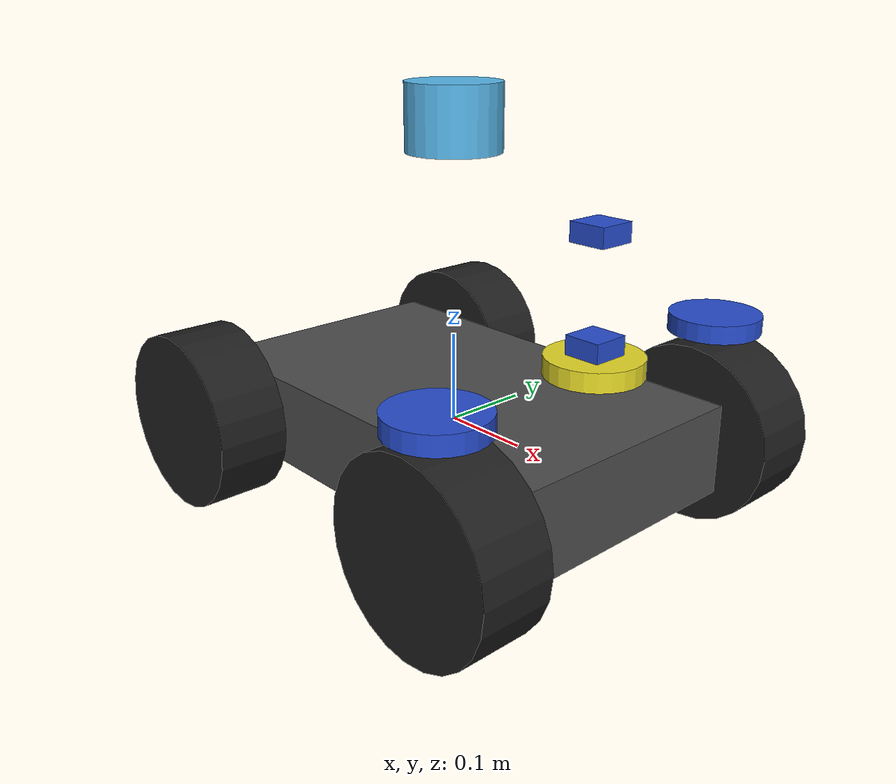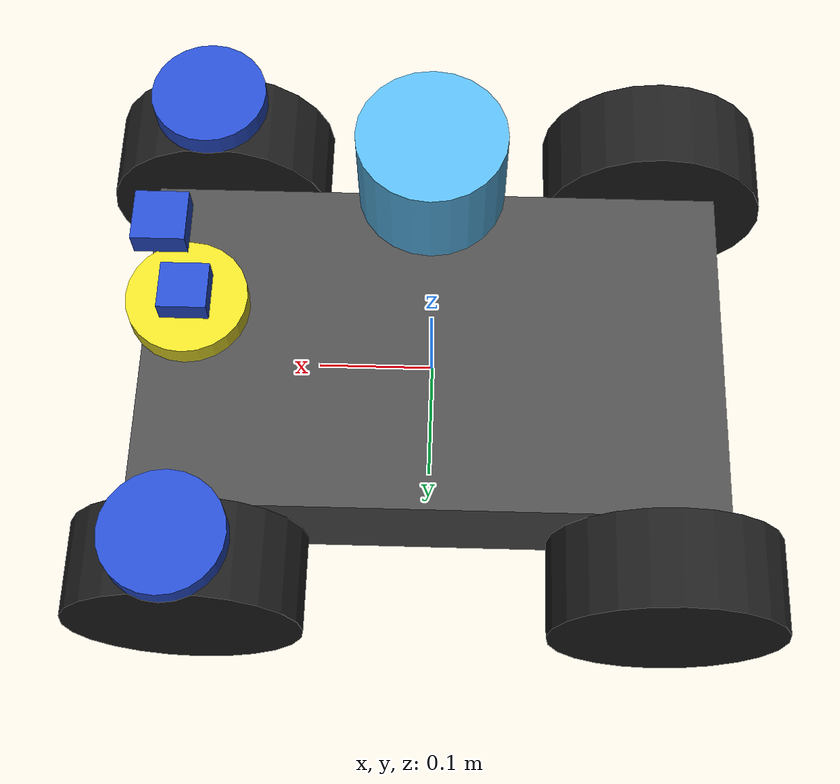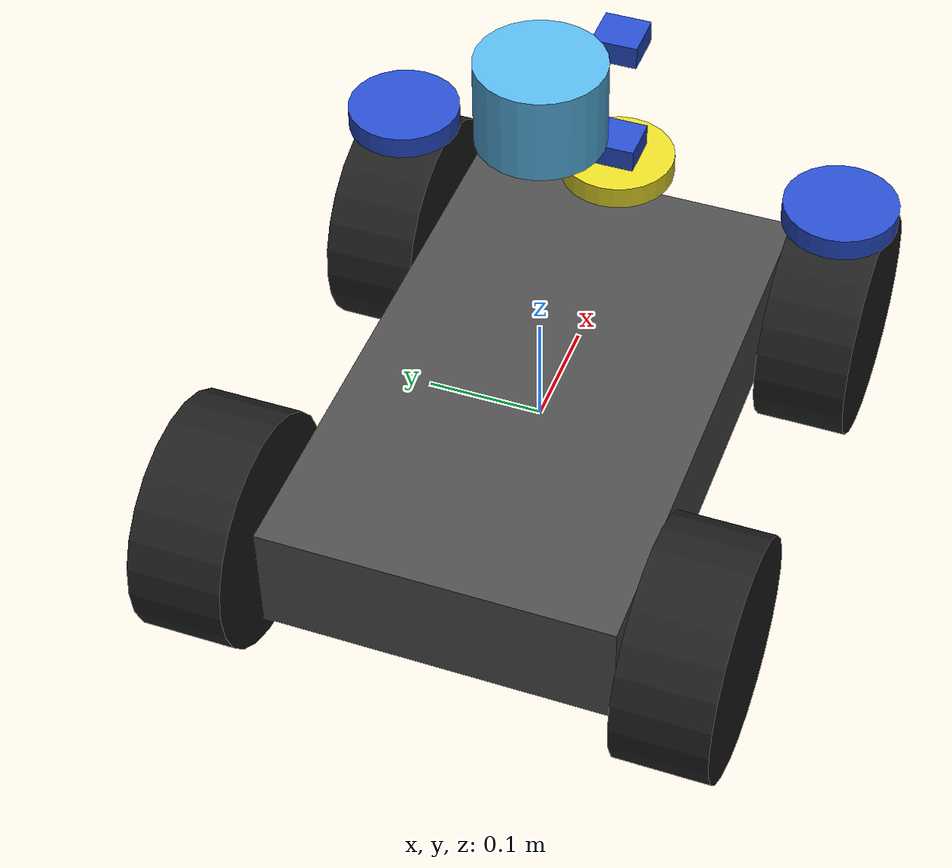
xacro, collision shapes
<?xml version="1.0"?>
<robot name="erp42_vehicle" xmlns:xacro="http://wiki.ros.org/xacro">
  <!-- Include xacro for inertials, materials and wheels -->
  <xacro:include filename="$(find erp42_vehicle_description)/urdf/wheel.xacro"/>
  <xacro:include filename="$(find velodyne_description)/urdf/VLP-16.urdf.xacro"/>

  <xacro:property name="robot_namespace" value="/erp42_vehicle"/>

  <!-- Gazebo plugins -->
  <gazebo>
    <!-- Load ros_control plugin using the steer_bot_hardware_gazebo
    implementation of the hardware_interface::RobotHW -->
    <plugin name="gazebo_ros_control" filename="libgazebo_ros_control.so">
      <robotSimType>erp42_hardware_gazebo/ERP42HardwareGazebo</robotSimType>
      <legacyModeNS>false</legacyModeNS>
    </plugin>
  </gazebo>

  <!-- Math constants -->
  <xacro:property name="deg_to_rad" value="0.01745329251994329577"/>

  <!-- Robot base dimensions -->
  <xacro:property name="base_length" value="0.5" />
  <xacro:property name="base_width" value="0.3" />
  <xacro:property name="base_height" value="0.1" />
  <xacro:property name="base_mass" value="5" />

  <!-- Wheel link dimensions -->
  <xacro:property name="wheel_radius" value="0.1" />
  <xacro:property name="wheel_thickness" value="0.08" />
  <xacro:property name="wheel_mass" value="1" />

  <!-- Steering link dimensions -->
  <xacro:property name="steer_radius" value="0.05" />
  <xacro:property name="steer_thickness" value="0.02" />
  <xacro:property name="steer_mass" value="1" />

  <!-- Axle positions -->
  <xacro:property name="axle_offset" value="0.05" />
  <xacro:property name="steer_offset" value="0.02" />

  <!-- Base link -->
  <link name="base_link">
    <visual>
      <origin xyz="0 0 0" rpy="0 0 0"/>
      <geometry>
        <box size="${base_length} ${base_width} ${base_height}"/>
      </geometry>
      <material name="dark_grey" />
    </visual>
    <collision>
      <origin xyz="0 0 0" rpy="0 0 0"/>
      <geometry>
        <box size="${base_length} ${base_width} ${base_height}"/>
      </geometry>
    </collision>
    <xacro:solid_cuboid_inertial
        rpy="0 0 0" xyz="0 0 0"
        mass="${base_mass}"
        x="${base_length}" y="${base_width}" z="${base_height}" />
  </link>

  <!-- Front steer and rear wheel joints required for ackermann_steering_controller -->
  <xacro:front_steer
    name="front"
    parent="base"
    steer_radius="${steer_radius}"
    steer_thickness="${steer_thickness}"
    steer_mass="${steer_mass}"
    base_length="${base_length}"
    base_width="${base_width}"
    axle_offset="${axle_offset}"
    steer_height="${wheel_radius+steer_offset}">
  </xacro:front_steer>

  <xacro:rear_wheel
    name="rear"
    parent="base"
    wheel_radius="${wheel_radius/4}"
    wheel_thickness="${wheel_thickness/2}"
    wheel_mass="${wheel_mass/32}">
    <origin xyz="${-base_length/2+axle_offset} 0 0" rpy="${-90 * deg_to_rad} 0 0"/>
  </xacro:rear_wheel>

  <!-- Steerable front wheels -->
  <xacro:front_wheel_lr
    name="front_right"
    parent="base"
    reflect="-1"
    wheel_radius="${wheel_radius}"
    wheel_thickness="${wheel_thickness}"
    wheel_mass="${wheel_mass}"
    steer_radius="${steer_radius}"
    steer_thickness="${steer_thickness}"
    steer_mass="${steer_mass}"
    base_length="${base_length}"
    base_width="${base_width}"
    axle_offset="${axle_offset}"
    steer_height="${wheel_radius+steer_offset}">
  </xacro:front_wheel_lr>
  <xacro:front_wheel_lr
    name="front_left"
    parent="base"
    reflect="1"
    wheel_radius="${wheel_radius}"
    wheel_thickness="${wheel_thickness}"
    wheel_mass="${wheel_mass}"
    steer_radius="${steer_radius}"
    steer_thickness="${steer_thickness}"
    steer_mass="${steer_mass}"
    base_length="${base_length}"
    base_width="${base_width}"
    axle_offset="${axle_offset}"
    steer_height="${wheel_radius+steer_offset}">
  </xacro:front_wheel_lr>

  <!-- Rear wheels -->
  <xacro:rear_wheel_lr
    name="rear_right"
    parent="base"
    wheel_radius="${wheel_radius}"
    wheel_thickness="${wheel_thickness}"
    wheel_mass="${wheel_mass}">
    <origin xyz="${-base_length/2+axle_offset} ${-base_width/2-axle_offset} 0" rpy="${-90 * deg_to_rad} 0 0"/>
  </xacro:rear_wheel_lr>
  <xacro:rear_wheel_lr
    name="rear_left"
    parent="base"
    wheel_radius="${wheel_radius}"
    wheel_thickness="${wheel_thickness}"
    wheel_mass="${wheel_mass}">
    <origin xyz="${-base_length/2+axle_offset} ${+base_width/2+axle_offset} 0" rpy="${-90 * deg_to_rad} 0 0"/>
  </xacro:rear_wheel_lr>

  <!-- Colour -->
  <gazebo reference="base_link">
    <material>Gazebo/Grey</material>
  </gazebo>

            <!-- VLP-16 -->

  <VLP-16 parent="base_link" name="velodyne" topic="/velodyne_points" hz="50" samples="1024" gpu="false" lasers="16" max_range="100">
    <origin xyz="0 0 0.3" rpy="0 0 0" />
  </VLP-16>

    <!-- IMU link -->
   <joint name="imu_joint" type="fixed">
    <axis xyz="0 0 1" />
    <origin xyz="0.2 0 0.14" rpy="0 0 0"/>
    <parent link="base_link"/>
    <child link="imu_link"/>
   </joint>
   <link name="imu_link">
    <visual>
      <origin xyz="0 0 0" rpy="0 0 0"/>
      <geometry>
        <box size="0.04 0.04 0.02"/>
      </geometry>
      <material name="blue" />
    </visual>
    <collision>
      <origin xyz="0 0 0" rpy="0 0 0"/>
      <geometry>
        <box size="0.04 0.04 0.02"/>
      </geometry>
    </collision>
   </link>

    <!-- GPS link -->
  <joint name="gps_joint" type="fixed">
    <axis xyz="0 0 1" />
    <origin xyz="0.2 0 0.25" rpy="0 0 0"/>
    <parent link="base_link"/>
    <child link="gps_link"/>
  </joint>
  <link name="gps_link">
    <visual>
      <origin xyz="0 0 0" rpy="0 0 0"/>
      <geometry>
        <box size="0.04 0.04 0.02"/>
      </geometry>
      <material name="blue" />
    </visual>
    <collision>
      <origin xyz="0 0 0" rpy="0 0 0"/>
      <geometry>
        <box size="0.04 0.04 0.02"/>
      </geometry>
    </collision>
  </link>

     <!-- Camera -->
  <joint name="camera_joint" type="fixed">
    <axis xyz="0 1 0" />
    <origin xyz="0.20 0 0.5" rpy="0 -0.1 0"/>
    <parent link="base_link"/>
    <child link="camera_link"/>
  </joint>

  <!-- Camera -->
  <xacro:property name="camera_size" value="0.05" /> <!-- Size of square 'camera' box -->
  <link name="camera_link">

    <visual>
        <geometry>
            <mesh filename="package://erp42_vehicle_description/meshes/sensors/kinect.dae"/>
        </geometry>
        <origin xyz="0 0 0" rpy="0 0 1.57"/>
        <material name="black"/>
    </visual>

    <inertial>
        <mass value="8.1"/>
        <inertia ixx="0.0675" ixy="0.0" ixz="0.0"
                 iyy="0.0135" iyz="0.0"
                 izz="0.0675"/>
    </inertial>
    </link>

  <!-- camera -->
  <gazebo reference="camera_link">
    <material>Gazebo/Black</material>
    <sensor type="depth" name="camera_ir">
      <update_rate>30.0</update_rate>
      <camera name="head">
        <horizontal_fov>1.047</horizontal_fov>
        <image>
          <width>600</width>
          <height>480</height>
          <format>R8G8B8</format>
        </image>
        <clip>
          <near>0.1</near>
          <far>100</far>
        </clip>
        <noise>
          <type>gaussian</type>
          <!-- Noise is sampled independently per pixel on each frame.
               That pixel's noise value is added to each of its color
               channels, which at that point lie in the range [0,1]. -->
          <mean>0.0</mean>
          <stddev>0.07</stddev>
        </noise>

      </camera>
      <plugin name="camera_controller" filename="libgazebo_ros_openni_kinect.so">
        <alwaysOn>true</alwaysOn>
        <updateRate>10.0</updateRate>
        <cameraName>camera_ir</cameraName>
        <imageTopicName>/camera/color/image_raw</imageTopicName>
        <cameraInfoTopicName>/camera/color/camera_info</cameraInfoTopicName>
        <depthImageTopicName>/camera/depth/image_raw</depthImageTopicName>
        <depthImageCameraInfoTopicName>/camera/depth/camera_info</depthImageCameraInfoTopicName>
        <pointCloudTopicName>/camera/depth/points</pointCloudTopicName>
        <frameName>camera_link</frameName>
        <pointCloudCutoff>0.4</pointCloudCutoff>
        <pointCloudCutoffMax>3.0</pointCloudCutoffMax>
        <distortionK1>0.0</distortionK1>
        <distortionK2>0.0</distortionK2>
        <distortionK3>0.0</distortionK3>
        <distortionT1>0.0</distortionT1>
        <distortionT2>0.0</distortionT2>
        <CxPrime>0</CxPrime>
        <Cx>0</Cx>
        <Cy>0</Cy>
        <focalLength>0</focalLength>
        <hackBaseline>0.07</hackBaseline>
      </plugin>
    </sensor>
  </gazebo>

  <gazebo>
    <plugin name="imu_plugin" filename="libgazebo_ros_imu.so">
      <alwaysOn>true</alwaysOn>
      <bodyName>imu_link</bodyName>
      <topicName>imu</topicName>
      <serviceName>imu_service</serviceName>
      <gaussianNoise>0.0</gaussianNoise>
      <updateRate>20.0</updateRate>
    </plugin>
  </gazebo>

  <gazebo>
    <plugin name="gps_plugin" filename="libhector_gazebo_ros_gps.so">
      <alwaysOn>true</alwaysOn>
      <bodyName>gps_link</bodyName>
      <topicName>fix</topicName>
      <velocitytopicName>fixvelocity</velocitytopicName>
      <drift>0.0 0.0 0.0</drift>
      <gaussianNoise>0.1 0.1 0.1</gaussianNoise>
      <velocitydrift>0 0 0</velocitydrift>
      <velocitygaussianNoise>0.1 0.1 0.1</velocitygaussianNoise>
      <updateRate>10.0</updateRate>
    </plugin>
  </gazebo>

</robot>

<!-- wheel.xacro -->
<robot name="wheel" xmlns:xacro="http://wiki.ros.org/xacro">
  <!-- Include xacro for materials and inertials -->
  <xacro:include filename="$(find erp42_vehicle_description)/urdf/materials.xacro"/>
  <xacro:include filename="$(find erp42_vehicle_description)/urdf/inertials.xacro"/>

  <!-- Properties -->
  <xacro:property name="steer_effort" value="10.0"/>
  <xacro:property name="steer_velocity" value="5.0"/>

  <!-- Bicycle model front steering link (required for steer_drive_controller) -->
  <xacro:macro name="front_steer"
    params="
      name
      parent
      steer_radius
      steer_thickness
      steer_mass
      base_length
      base_width
      axle_offset
      steer_height">
    <link name="${name}_steer_link">
      <visual>
        <origin xyz="0 0 0" rpy="0 0 0"/>
        <geometry>
          <cylinder radius="${steer_radius}" length="${steer_thickness}"/>
        </geometry>
        <material name="yellow" />
      </visual>
      <collision>
        <origin xyz="0 0 0" rpy="0 0 0"/>
        <geometry>
          <cylinder radius="${steer_radius}" length="${steer_thickness}"/>
        </geometry>
      </collision>
      <xacro:solid_cylinder_inertial
          rpy="0 0 0" xyz="0 0 0"
          mass="${steer_mass}"
          radius="${steer_radius}" length="${steer_thickness}" />
    </link>

    <joint name="${name}_steer_joint" type="revolute">
      <parent link="${parent}_link"/>
      <child link="${name}_steer_link"/>
      <origin xyz="${base_length/2-axle_offset} 0 ${steer_height}" rpy="0 0 0"/>
      <axis xyz="0 0 1"/>
      <limit effort="${steer_effort}"
             lower="${-180.0 * deg_to_rad}" upper="${180.0 * deg_to_rad}"
             velocity="${steer_velocity}"/>
    </joint>

    <transmission name="${name}_steer_joint_trans">
      <type>transmission_interface/SimpleTransmission</type>
      <actuator name="${name}_steer_joint_motor">
        <mechanicalReduction>1</mechanicalReduction>
        <hardwareInterface>hardware_interface/PositionJointInterface</hardwareInterface>
      </actuator>
      <joint name="${name}_steer_joint">
        <hardwareInterface>hardware_interface/PositionJointInterface</hardwareInterface>
      </joint>
    </transmission>

    <gazebo reference="${name}_steer_link">
      <material>Gazebo/Yellow</material>
    </gazebo>
  </xacro:macro>

  <!-- Car steering model front (steerable) wheel links (left/right) -->
  <xacro:macro name="front_wheel_lr"
    params="
      name
      parent
      reflect
      wheel_radius
      wheel_thickness
      wheel_mass
      steer_radius
      steer_thickness
      steer_mass
      base_length
      base_width
      axle_offset
      steer_height">
    <link name="${name}_steer_link">
      <visual>
        <origin xyz="0 0 0" rpy="0 0 0"/>
        <geometry>
          <cylinder radius="${steer_radius}" length="${steer_thickness}"/>
        </geometry>
        <material name="blue" />
      </visual>
      <collision>
        <origin xyz="0 0 0" rpy="0 0 0"/>
        <geometry>
          <cylinder radius="${steer_radius}" length="${steer_thickness}"/>
        </geometry>
      </collision>
      <xacro:solid_cylinder_inertial
          rpy="0 0 0" xyz="0 0 0"
          mass="${steer_mass}"
          radius="${steer_radius}" length="${steer_thickness}" />
    </link>

    <joint name="${name}_steer_joint" type="revolute">
      <parent link="${parent}_link"/>
      <child link="${name}_steer_link"/>
      <origin xyz="${base_length/2-axle_offset} ${reflect*(base_width/2+axle_offset)} ${steer_height}" rpy="0 0 0"/>
      <axis xyz="0 0 1"/>
      <limit effort="${steer_effort}"
             lower="${-180.0 * deg_to_rad}" upper="${180.0 * deg_to_rad}"
             velocity="${steer_velocity}"/>
    </joint>

    <link name="${name}_wheel_link">
      <visual>
        <origin xyz="0 0 0" rpy="0 0 0"/>
        <geometry>
          <cylinder radius="${wheel_radius}" length="${wheel_thickness}"/>
        </geometry>
        <material name="black" />
      </visual>
      <collision>
        <origin xyz="0 0 0" rpy="0 0 0"/>
        <geometry>
          <cylinder radius="${wheel_radius}" length="${wheel_thickness}"/>
        </geometry>
      </collision>
      <xacro:solid_cylinder_inertial
          rpy="0 0 0" xyz="0 0 0"
          mass="${wheel_mass}"
          radius="${wheel_radius}" length="${wheel_thickness}" />
    </link>

    <joint name="${name}_wheel_joint" type="continuous">
      <parent link="${name}_steer_link"/>
      <child link="${name}_wheel_link"/>
      <origin xyz="0 0 ${-steer_height}" rpy="${-90 * deg_to_rad} 0 0"/>
      <axis xyz="0 0 1"/>
    </joint>

    <transmission name="${name}_steer_joint_trans">
      <type>transmission_interface/SimpleTransmission</type>
      <actuator name="${name}_steer_joint_motor">
        <mechanicalReduction>1</mechanicalReduction>
        <hardwareInterface>hardware_interface/PositionJointInterface</hardwareInterface>
      </actuator>
      <joint name="${name}_steer_joint">
        <hardwareInterface>hardware_interface/PositionJointInterface</hardwareInterface>
      </joint>
    </transmission>

    <transmission name="${name}_wheel_joint_trans">
      <type>transmission_interface/SimpleTransmission</type>
      <actuator name="${name}_wheel_joint_motor">
        <mechanicalReduction>1</mechanicalReduction>
        <hardwareInterface>hardware_interface/VelocityJointInterface</hardwareInterface>
      </actuator>
      <joint name="${name}_wheel_joint">
        <hardwareInterface>hardware_interface/VelocityJointInterface</hardwareInterface>
      </joint>
    </transmission>

    <gazebo reference="${name}_steer_link">
      <material>Gazebo/Grey</material>
    </gazebo>

    <gazebo reference="${name}_wheel_link">
      <material>Gazebo/Black</material>
    </gazebo>
  </xacro:macro>

  <!-- Bicycle model rear wheel link (required for steer_drive_controller) -->
  <xacro:macro name="rear_wheel"
    params="
      name
      parent
      wheel_radius
      wheel_thickness
      wheel_mass
      *origin">
    <link name="${name}_wheel_link">
      <visual>
        <origin xyz="0 0 0" rpy="0 0 0"/>
        <geometry>
          <cylinder radius="${wheel_radius}" length="${wheel_thickness}"/>
        </geometry>
        <material name="yellow" />
      </visual>
      <collision>
        <origin xyz="0 0 0" rpy="0 0 0"/>
        <geometry>
          <cylinder radius="${wheel_radius}" length="${wheel_thickness}"/>
        </geometry>
      </collision>
      <xacro:solid_cylinder_inertial
          rpy="0 0 0" xyz="0 0 0"
          mass="${wheel_mass}"
          radius="${wheel_radius}" length="${wheel_thickness}" />
    </link>

    <joint name="${name}_wheel_joint" type="continuous">
      <parent link="${parent}_link"/>
      <child link="${name}_wheel_link"/>
      <xacro:insert_block name="origin"/>
      <axis xyz="0 0 1"/>
    </joint>

    <transmission name="${name}_wheel_joint_trans">
      <type>transmission_interface/SimpleTransmission</type>
      <actuator name="${name}_wheel_joint_motor">
        <mechanicalReduction>1</mechanicalReduction>
        <hardwareInterface>hardware_interface/VelocityJointInterface</hardwareInterface>
      </actuator>
      <joint name="${name}_wheel_joint">
        <hardwareInterface>hardware_interface/VelocityJointInterface</hardwareInterface>
      </joint>
    </transmission>

    <gazebo reference="${name}_wheel_link">
      <material>Gazebo/Yellow</material>
    </gazebo>
  </xacro:macro>

  <!-- Bicycle model front wheel link (passive - no transmission) -->
  <xacro:macro name="front_wheel"
    params="
      name
      parent
      wheel_radius
      wheel_thickness
      wheel_mass
      *origin">
    <link name="${name}_wheel_link">
      <visual>
        <origin xyz="0 0 0" rpy="0 0 0"/>
        <geometry>
          <cylinder radius="${wheel_radius}" length="${wheel_thickness}"/>
        </geometry>
        <material name="yellow" />
      </visual>
      <collision>
        <origin xyz="0 0 0" rpy="0 0 0"/>
        <geometry>
          <cylinder radius="${wheel_radius}" length="${wheel_thickness}"/>
        </geometry>
      </collision>
      <xacro:solid_cylinder_inertial
          rpy="0 0 0" xyz="0 0 0"
          mass="${wheel_mass}"
          radius="${wheel_radius}" length="${wheel_thickness}" />
    </link>

    <joint name="${name}_wheel_joint" type="continuous">
      <parent link="${parent}_link"/>
      <child link="${name}_wheel_link"/>
      <xacro:insert_block name="origin"/>
      <axis xyz="0 0 1"/>
    </joint>

    <gazebo reference="${name}_wheel_link">
      <material>Gazebo/Yellow</material>
    </gazebo>

    <gazebo reference="${name}_wheel_joint">
      <provideFeedback>true</provideFeedback>
    </gazebo>
  </xacro:macro>

  <!-- Car steering model rear wheel links (left/right) -->
  <xacro:macro name="rear_wheel_lr"
    params="
      name
      parent
      wheel_radius
      wheel_thickness
      wheel_mass
      *origin">
    <link name="${name}_wheel_link">
      <visual>
        <origin xyz="0 0 0" rpy="0 0 0"/>
        <geometry>
          <cylinder radius="${wheel_radius}" length="${wheel_thickness}"/>
        </geometry>
        <material name="black" />
      </visual>
      <collision>
        <origin xyz="0 0 0" rpy="0 0 0"/>
        <geometry>
          <cylinder radius="${wheel_radius}" length="${wheel_thickness}"/>
        </geometry>
      </collision>
      <xacro:solid_cylinder_inertial
          rpy="0 0 0" xyz="0 0 0"
          mass="${wheel_mass}"
          radius="${wheel_radius}" length="${wheel_thickness}" />
    </link>

    <joint name="${name}_wheel_joint" type="continuous">
      <parent link="${parent}_link"/>
      <child link="${name}_wheel_link"/>
      <xacro:insert_block name="origin"/>
      <axis xyz="0 0 1"/>
    </joint>

    <transmission name="${name}_wheel_joint_trans">
      <type>transmission_interface/SimpleTransmission</type>
      <actuator name="${name}_wheel_joint_motor">
        <mechanicalReduction>1</mechanicalReduction>
        <hardwareInterface>hardware_interface/VelocityJointInterface</hardwareInterface>
      </actuator>
      <joint name="${name}_wheel_joint">
        <hardwareInterface>hardware_interface/VelocityJointInterface</hardwareInterface>
      </joint>
    </transmission>

    <gazebo reference="${name}_wheel_link">
      <material>Gazebo/Black</material>
    </gazebo>
  </xacro:macro>
</robot>

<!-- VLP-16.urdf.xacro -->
<robot xmlns:xacro="http://www.ros.org/wiki/xacro" name="VLP-16">
  <xacro:property name="M_PI" value="3.1415926535897931" />
  <xacro:macro name="VLP-16" params="*origin is_sim:=true parent:=base_link name:=velodyne tf_prefix:='' topic:=/velodyne_points organize_cloud:=false hz:=10 lasers:=16 samples:=1875 collision_range:=0.3 min_range:=0.0 max_range:=100.0 noise:=0.008 min_angle:=-${M_PI} max_angle:=${M_PI} gpu:=false">

    <joint name="${name}_base_mount_joint" type="fixed">
      <xacro:insert_block name="origin" />
      <parent link="${parent}"/>
      <child link="${name}_base_link"/>
    </joint>

    <link name="${name}_base_link">
      <inertial>
        <mass value="0.83"/>
        <origin xyz="0 0 0.03585"/>
        <inertia ixx="${(0.83 * (3.0*0.0516*0.0516 + 0.0717*0.0717)) / 12.0}" ixy="0" ixz="0"
          iyy="${(0.83 * (3.0*0.0516*0.0516 + 0.0717*0.0717)) / 12.0}" iyz="0"
          izz="${0.5 * 0.83 * (0.0516*0.0516)}"/>
      </inertial>
      <visual>
        <geometry>
          <mesh filename="package://velodyne_description/meshes/VLP16_base_1.dae" />
        </geometry>
      </visual>
      <visual>
        <geometry>
          <mesh filename="package://velodyne_description/meshes/VLP16_base_2.dae" />
        </geometry>
      </visual>
      <collision>
        <origin rpy="0 0 0" xyz="0 0 0.03585"/>
        <geometry>
          <cylinder radius="0.0516" length="0.0717"/>
        </geometry>
      </collision>
    </link>

    <joint name="${name}_base_scan_joint" type="fixed" >
      <origin xyz="0 0 0.0377" rpy="0 0 0" />
      <parent link="${name}_base_link" />
      <child link="${name}"/>
    </joint>

    <link name="${name}">
      <inertial>
        <mass value="0.01"/>
        <origin xyz="0 0 0"/>
        <inertia ixx="1e-7" ixy="0" ixz="0" iyy="1e-7" iyz="0" izz="1e-7"/>
      </inertial>
      <visual>
        <origin xyz="0 0 -0.0377" />
        <geometry>
          <mesh filename="package://velodyne_description/meshes/VLP16_scan.dae" />
        </geometry>
      </visual>
      <collision>
        <geometry>
          <sphere radius="0"/>
        </geometry>
      </collision>
    </link>

    <!-- Gazebo requires the velodyne_gazebo_plugins package -->
    <xacro:if value="${is_sim}">
        <gazebo reference="${name}">
            <xacro:if value="${gpu}">
                <sensor type="gpu_ray" name="${name}-VLP16">
                <pose>0 0 0 0 0 0</pose>
                <visualize>false</visualize>
                <update_rate>${hz}</update_rate>
                <ray>
                    <scan>
                    <horizontal>
                        <samples>${samples}</samples>
                        <resolution>1</resolution>
                        <min_angle>${min_angle}</min_angle>
                        <max_angle>${max_angle}</max_angle>
                    </horizontal>
                    <vertical>
                        <samples>${lasers}</samples>
                        <resolution>1</resolution>
                        <min_angle>-${15.0*M_PI/180.0}</min_angle>
                        <max_angle> ${15.0*M_PI/180.0}</max_angle>
                    </vertical>
                    </scan>
                    <range>
                    <min>${collision_range}</min>
                    <max>${max_range+1}</max>
                    <resolution>0.001</resolution>
                    </range>
                    <noise>
                    <type>gaussian</type>
                    <mean>0.0</mean>
                    <stddev>0.0</stddev>
                    </noise>
                </ray>
                <plugin name="gazebo_ros_laser_controller" filename="libgazebo_ros_velodyne_laser.so">
                    <ros>
                    <namespace>/${name}</namespace>
                    <remapping>~/out:=${topic}</remapping>
                    </ros>
                    <tf_prefix>${tf_prefix}</tf_prefix>
                    <frame_name>${name}</frame_name>
                    <organize_cloud>${organize_cloud}</organize_cloud>
                    <min_range>${min_range}</min_range>
                    <max_range>${max_range}</max_range>
                    <gaussian_noise>${noise}</gaussian_noise>
                </plugin>
                </sensor>
            </xacro:if>
            <xacro:unless value="${gpu}">
                <sensor type="ray" name="${name}-VLP16">
                <pose>0 0 0 0 0 0</pose>
                <visualize>false</visualize>
                <update_rate>${hz}</update_rate>
                <ray>
                    <scan>
                    <horizontal>
                        <samples>${samples}</samples>
                        <resolution>1</resolution>
                        <min_angle>${min_angle}</min_angle>
                        <max_angle>${max_angle}</max_angle>
                    </horizontal>
                    <vertical>
                        <samples>${lasers}</samples>
                        <resolution>1</resolution>
                        <min_angle>-${15.0*M_PI/180.0}</min_angle>
                        <max_angle> ${15.0*M_PI/180.0}</max_angle>
                    </vertical>
                    </scan>
                    <range>
                    <min>${collision_range}</min>
                    <max>${max_range+1}</max>
                    <resolution>0.001</resolution>
                    </range>
                    <noise>
                    <type>gaussian</type>
                    <mean>0.0</mean>
                    <stddev>0.0</stddev>
                    </noise>
                </ray>
                <plugin name="gazebo_ros_laser_controller" filename="libgazebo_ros_velodyne_laser.so">
                    <ros>
                    <namespace>/${name}</namespace>
                    <remapping>~/out:=${topic}</remapping>
                    </ros>
                    <tf_prefix>${tf_prefix}</tf_prefix>
                    <frame_name>${name}</frame_name>
                    <organize_cloud>${organize_cloud}</organize_cloud>
                    <min_range>${min_range}</min_range>
                    <max_range>${max_range}</max_range>
                    <gaussian_noise>${noise}</gaussian_noise>
                </plugin>
                </sensor>
            </xacro:unless>
        </gazebo>
    </xacro:if>

  </xacro:macro>
</robot>
